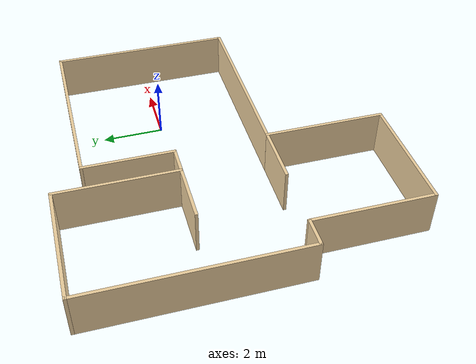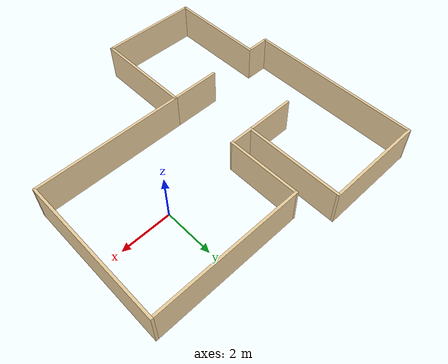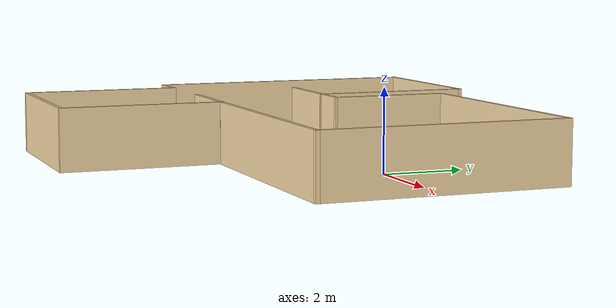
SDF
<?xml version='1.0'?>
<sdf version='1.7'>
  <model name='building'>
    <pose>-2.35191 -1.41681 0 0 -0 0</pose>
    <link name='Wall_0'>
      <collision name='Wall_0_Collision'>
        <geometry>
          <box>
            <size>6 0.1 1.5</size>
          </box>
        </geometry>
        <pose>0 0 .75 0 -0 0</pose>
      </collision>
      <visual name='Wall_0_Visual'>
        <pose>0 0 .75 0 -0 0</pose>
        <geometry>
          <box>
            <size>6 0.1 1.5</size>
          </box>
        </geometry>
        <material>
          <script>
            <uri>file://media/materials/scripts/gazebo.material</uri>
            <name>Gazebo/Grey</name>
          </script>
          <ambient>0.921569 0.807843 0.615686 1</ambient>
        </material>
        <meta>
          <layer>0</layer>
        </meta>
      </visual>
      <pose>5.35 1.45074 0 0 -0 -1.57083</pose>
    </link>
    <link name='Wall_16'>
      <collision name='Wall_16_Collision'>
        <geometry>
          <box>
            <size>4 0.1 1.5</size>
          </box>
        </geometry>
        <pose>0 0 .75 0 -0 0</pose>
      </collision>
      <visual name='Wall_16_Visual'>
        <pose>0 0 .75 0 -0 0</pose>
        <geometry>
          <box>
            <size>4 0.1 1.5</size>
          </box>
        </geometry>
        <material>
          <script>
            <uri>file://media/materials/scripts/gazebo.material</uri>
            <name>Gazebo/Grey</name>
          </script>
          <ambient>0.921569 0.807843 0.615686 1</ambient>
        </material>
        <meta>
          <layer>0</layer>
        </meta>
      </visual>
      <pose>-1.45009 3.45 0 0 -0 1.5708</pose>
    </link>
    <link name='Wall_18'>
      <collision name='Wall_18_Collision'>
        <geometry>
          <box>
            <size>4 0.1 1.5</size>
          </box>
        </geometry>
        <pose>0 0 .75 0 -0 0</pose>
      </collision>
      <visual name='Wall_18_Visual'>
        <pose>0 0 .75 0 -0 0</pose>
        <geometry>
          <box>
            <size>4 0.1 1.5</size>
          </box>
        </geometry>
        <material>
          <script>
            <uri>file://media/materials/scripts/gazebo.material</uri>
            <name>Gazebo/Grey</name>
          </script>
          <ambient>0.921569 0.807843 0.615686 1</ambient>
        </material>
        <meta>
          <layer>0</layer>
        </meta>
      </visual>
      <pose>-3.40009 5.4 0 0 -0 -3.1415</pose>
    </link>
    <link name='Wall_2'>
      <collision name='Wall_2_Collision'>
        <geometry>
          <box>
            <size>6 0.1 1.5</size>
          </box>
        </geometry>
        <pose>0 0 .75 0 -0 0</pose>
      </collision>
      <visual name='Wall_2_Visual'>
        <pose>0 0 .75 0 -0 0</pose>
        <geometry>
          <box>
            <size>6 0.1 1.5</size>
          </box>
        </geometry>
        <material>
          <script>
            <uri>file://media/materials/scripts/gazebo.material</uri>
            <name>Gazebo/Grey</name>
          </script>
          <ambient>0.921569 0.807843 0.615686 1</ambient>
        </material>
        <meta>
          <layer>0</layer>
        </meta>
      </visual>
      <pose>2.39991 -1.49918 0 0 -0 3.14159</pose>
    </link>
    <link name='Wall_20'>
      <collision name='Wall_20_Collision'>
        <geometry>
          <box>
            <size>7 0.1 1.5</size>
          </box>
        </geometry>
        <pose>0 0 .75 0 -0 0</pose>
      </collision>
      <visual name='Wall_20_Visual'>
        <pose>0 0 .75 0 -0 0</pose>
        <geometry>
          <box>
            <size>7 0.1 1.5</size>
          </box>
        </geometry>
        <material>
          <script>
            <uri>file://media/materials/scripts/gazebo.material</uri>
            <name>Gazebo/Grey</name>
          </script>
          <ambient>0.921569 0.807843 0.615686 1</ambient>
        </material>
        <meta>
          <layer>0</layer>
        </meta>
      </visual>
      <pose>-5.35009 1.94982 0 0 -0 -1.5708</pose>
    </link>
    <link name='Wall_24'>
      <collision name='Wall_24_Collision'>
        <geometry>
          <box>
            <size>2 0.1 1.5</size>
          </box>
        </geometry>
        <pose>0 0 .75 0 -0 0</pose>
      </collision>
      <visual name='Wall_24_Visual'>
        <pose>0 0 .75 0 -0 0</pose>
        <geometry>
          <box>
            <size>2 0.1 1.5</size>
          </box>
        </geometry>
        <material>
          <script>
            <uri>file://media/materials/scripts/gazebo.material</uri>
            <name>Gazebo/Grey</name>
          </script>
          <ambient>0.921569 0.807843 0.615686 1</ambient>
        </material>
        <meta>
          <layer>0</layer>
        </meta>
      </visual>
      <pose>-2.40009 1.49981 0 0 -0 3.14159</pose>
    </link>
    <link name='Wall_26'>
      <collision name='Wall_26_Collision'>
        <geometry>
          <box>
            <size>1 0.1 1.5</size>
          </box>
        </geometry>
        <pose>0 0 .75 0 -0 0</pose>
      </collision>
      <visual name='Wall_26_Visual'>
        <pose>0 0 .75 0 -0 0</pose>
        <geometry>
          <box>
            <size>1 0.1 1.5</size>
          </box>
        </geometry>
        <material>
          <script>
            <uri>file://media/materials/scripts/gazebo.material</uri>
            <name>Gazebo/Grey</name>
          </script>
          <ambient>0.921569 0.807843 0.615686 1</ambient>
        </material>
        <meta>
          <layer>0</layer>
        </meta>
      </visual>
      <pose>-4.90009 -1.50019 0 0 -0 0</pose>
    </link>
    <link name='Wall_28'>
      <collision name='Wall_28_Collision'>
        <geometry>
          <box>
            <size>4 0.1 1.5</size>
          </box>
        </geometry>
        <pose>0 0 .75 0 -0 0</pose>
      </collision>
      <visual name='Wall_28_Visual'>
        <pose>0 0 .75 0 -0 0</pose>
        <geometry>
          <box>
            <size>4 0.1 1.5</size>
          </box>
        </geometry>
        <material>
          <script>
            <uri>file://media/materials/scripts/gazebo.material</uri>
            <name>Gazebo/Grey</name>
          </script>
          <ambient>0.921569 0.807843 0.615686 1</ambient>
        </material>
        <meta>
          <layer>0</layer>
        </meta>
      </visual>
      <pose>-4.45009 -3.45019 0 0 -0 -1.5708</pose>
    </link>
    <link name='Wall_30'>
      <collision name='Wall_30_Collision'>
        <geometry>
          <box>
            <size>4 0.1 1.5</size>
          </box>
        </geometry>
        <pose>0 0 .75 0 -0 0</pose>
      </collision>
      <visual name='Wall_30_Visual'>
        <pose>0 0 .75 0 -0 0</pose>
        <geometry>
          <box>
            <size>4 0.1 1.5</size>
          </box>
        </geometry>
        <material>
          <script>
            <uri>file://media/materials/scripts/gazebo.material</uri>
            <name>Gazebo/Grey</name>
          </script>
          <ambient>0.921569 0.807843 0.615686 1</ambient>
        </material>
        <meta>
          <layer>0</layer>
        </meta>
      </visual>
      <pose>-2.50009 -5.40018 0 0 -0 0</pose>
    </link>
    <link name='Wall_34'>
      <collision name='Wall_34_Collision'>
        <geometry>
          <box>
            <size>4 0.1 1.5</size>
          </box>
        </geometry>
        <pose>0 0 .75 0 -0 0</pose>
      </collision>
      <visual name='Wall_34_Visual'>
        <pose>0 0 .75 0 -0 0</pose>
        <geometry>
          <box>
            <size>4 0.1 1.5</size>
          </box>
        </geometry>
        <material>
          <script>
            <uri>file://media/materials/scripts/gazebo.material</uri>
            <name>Gazebo/Grey</name>
          </script>
          <ambient>0.921569 0.807843 0.615686 1</ambient>
        </material>
        <meta>
          <layer>0</layer>
        </meta>
      </visual>
      <pose>-0.550087 -3.45019 0 0 -0 1.5708</pose>
    </link>
    <link name='Wall_36'>
      <collision name='Wall_36_Collision'>
        <geometry>
          <box>
            <size>2 0.1 1.5</size>
          </box>
        </geometry>
        <pose>0 0 .75 0 -0 0</pose>
      </collision>
      <visual name='Wall_36_Visual'>
        <pose>0 0 .75 0 -0 0</pose>
        <geometry>
          <box>
            <size>2 0.1 1.5</size>
          </box>
        </geometry>
        <material>
          <script>
            <uri>file://media/materials/scripts/gazebo.material</uri>
            <name>Gazebo/Grey</name>
          </script>
          <ambient>0.921569 0.807843 0.615686 1</ambient>
        </material>
        <meta>
          <layer>0</layer>
        </meta>
      </visual>
      <pose>-1.50009 -1.50019 0 0 -0 3.14159</pose>
    </link>
    <link name='Wall_4'>
      <collision name='Wall_4_Collision'>
        <geometry>
          <box>
            <size>6 0.1 1.5</size>
          </box>
        </geometry>
        <pose>0 0 .75 0 -0 0</pose>
      </collision>
      <visual name='Wall_4_Visual'>
        <pose>0 0 .75 0 -0 0</pose>
        <geometry>
          <box>
            <size>6 0.1 1.5</size>
          </box>
        </geometry>
        <material>
          <script>
            <uri>file://media/materials/scripts/gazebo.material</uri>
            <name>Gazebo/Grey</name>
          </script>
          <ambient>0.921569 0.807843 0.615686 1</ambient>
        </material>
        <meta>
          <layer>0</layer>
        </meta>
      </visual>
      <pose>2.40009 4.40067 0 0 -0 3.14159</pose>
    </link>
    <link name='Wall_6'>
      <collision name='Wall_6_Collision'>
        <geometry>
          <box>
            <size>3 0.1 1.5</size>
          </box>
        </geometry>
        <pose>0 0 .75 0 -0 0</pose>
      </collision>
      <visual name='Wall_6_Visual'>
        <pose>0 0 .75 0 -0 0</pose>
        <geometry>
          <box>
            <size>3 0.1 1.5</size>
          </box>
        </geometry>
        <material>
          <script>
            <uri>file://media/materials/scripts/gazebo.material</uri>
            <name>Gazebo/Grey</name>
          </script>
          <ambient>0.921569 0.807843 0.615686 1</ambient>
        </material>
        <meta>
          <layer>0</layer>
        </meta>
      </visual>
      <pose>-0.549999 2.95074 0 0 -0 -1.57086</pose>
    </link>
    <link name='Wall_8'>
      <collision name='Wall_8_Collision'>
        <geometry>
          <box>
            <size>1 0.1 1.5</size>
          </box>
        </geometry>
        <pose>0 0 .75 0 -0 0</pose>
      </collision>
      <visual name='Wall_8_Visual'>
        <pose>0 0 .75 0 -0 0</pose>
        <geometry>
          <box>
            <size>1 0.1 1.5</size>
          </box>
        </geometry>
        <material>
          <script>
            <uri>file://media/materials/scripts/gazebo.material</uri>
            <name>Gazebo/Grey</name>
          </script>
          <ambient>0.921569 0.807843 0.615686 1</ambient>
        </material>
        <meta>
          <layer>0</layer>
        </meta>
      </visual>
      <pose>-1.00009 1.50032 0 0 -0 -3.14048</pose>
    </link>
    <static>1</static>
  </model>
</sdf>
